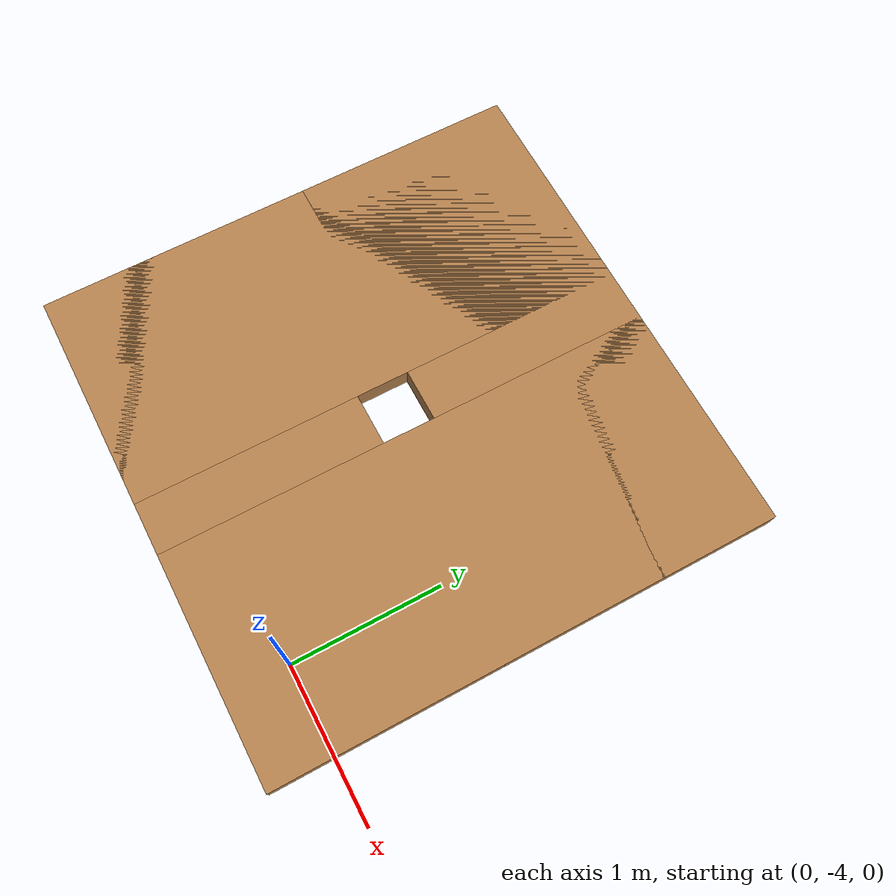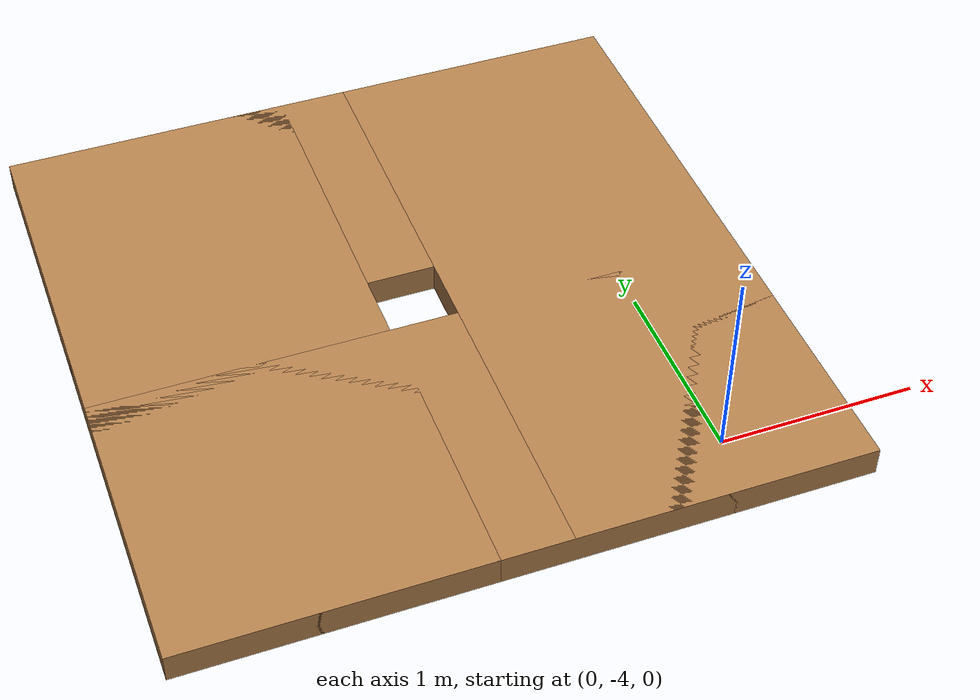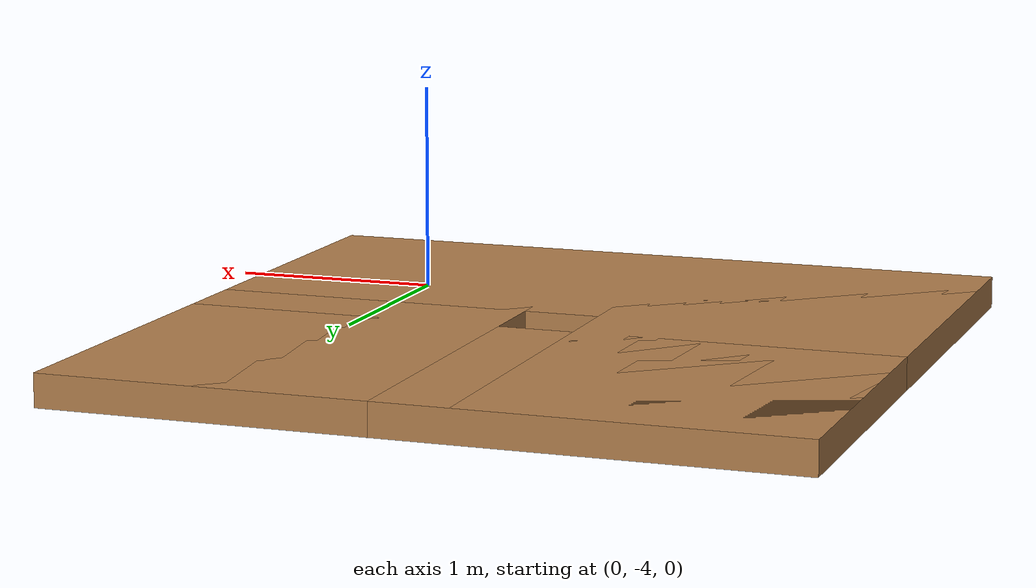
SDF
<?xml version='1.0'?>
<sdf version='1.6'>
  <model name='env_hole'>
    <pose frame=''>-1.087 -2.735 0 0 -0 0</pose>
    <link name='Wall_10'>
      <collision name='Wall_10_Collision'>
        <geometry>
          <box>
            <size>3.35 1.5 0.15</size>
          </box>
        </geometry>
        <pose frame=''>0 0 0.075 0 -0 0</pose>
      </collision>
      <visual name='Wall_10_Visual'>
        <pose frame=''>0 0 0.075 0 -0 0</pose>
        <geometry>
          <box>
            <size>3.35 1.5 0.15</size>
          </box>
        </geometry>
        <material>
          <script>
            <uri>file://media/materials/scripts/gazebo.material</uri>
            <name>Gazebo/Wood</name>
          </script>
          <ambient>1 1 1 1</ambient>
        </material>
        <meta>
          <layer>0</layer>
        </meta>
      </visual>
      <pose frame=''>0.925 0 0 0 -0 -1.5708</pose>
    </link>
    <link name='Wall_5'>
      <collision name='Wall_5_Collision'>
        <geometry>
          <box>
            <size>3.35 1.5 0.15</size>
          </box>
        </geometry>
        <pose frame=''>0 0 0.075 0 -0 0</pose>
      </collision>
      <visual name='Wall_5_Visual'>
        <pose frame=''>0 0 0.075 0 -0 0</pose>
        <geometry>
          <box>
            <size>3.35 1.5 0.15</size>
          </box>
        </geometry>
        <material>
          <script>
            <uri>file://media/materials/scripts/gazebo.material</uri>
            <name>Gazebo/Wood</name>
          </script>
          <ambient>1 1 1 1</ambient>
        </material>
        <meta>
          <layer>0</layer>
        </meta>
      </visual>
      <pose frame=''>0 0.925 0 0 -0 3.14159</pose>
    </link>
    <link name='Wall_6'>
      <collision name='Wall_6_Collision'>
        <geometry>
          <box>
            <size>3.35 1.5 0.15</size>
          </box>
        </geometry>
        <pose frame=''>0 0 0.075 0 -0 0</pose>
      </collision>
      <visual name='Wall_6_Visual'>
        <pose frame=''>0 0 0.075 0 -0 0</pose>
        <geometry>
          <box>
            <size>3.35 1.5 0.15</size>
          </box>
        </geometry>
        <material>
          <script>
            <uri>file://media/materials/scripts/gazebo.material</uri>
            <name>Gazebo/Wood</name>
          </script>
          <ambient>1 1 1 1</ambient>
        </material>
        <meta>
          <layer>0</layer>
        </meta>
      </visual>
      <pose frame=''>-0.925 0 0 0 -0 -1.5708</pose>
    </link>
    <link name='Wall_7'>
      <collision name='Wall_7_Collision'>
        <geometry>
          <box>
            <size>3.35 1.5 0.15</size>
          </box>
        </geometry>
        <pose frame=''>0 0 0.075 0 -0 0</pose>
      </collision>
      <visual name='Wall_7_Visual'>
        <pose frame=''>0 0 0.075 0 -0 0</pose>
        <geometry>
          <box>
            <size>3.35 1.5 0.15</size>
          </box>
        </geometry>
        <material>
          <script>
            <uri>file://media/materials/scripts/gazebo.material</uri>
            <name>Gazebo/Wood</name>
          </script>
          <ambient>1 1 1 1</ambient>
        </material>
        <meta>
          <layer>0</layer>
        </meta>
      </visual>
      <pose frame=''>0 -0.925 0 0 -0 0</pose>
    </link>
    <static>1</static>
  </model>
</sdf>
